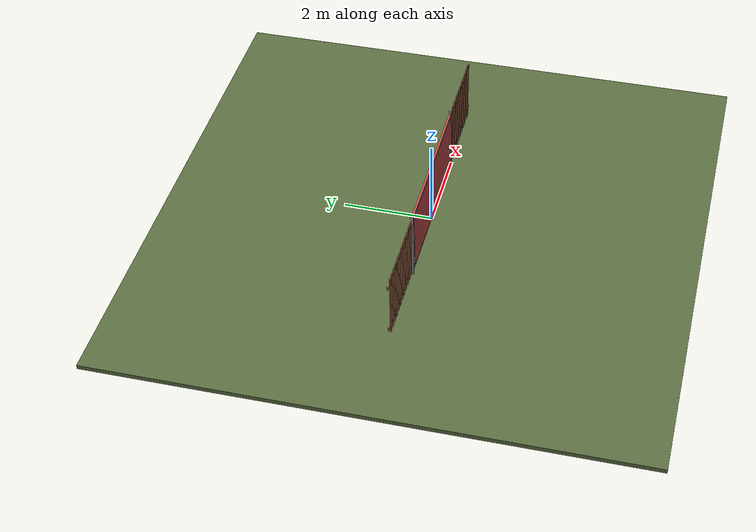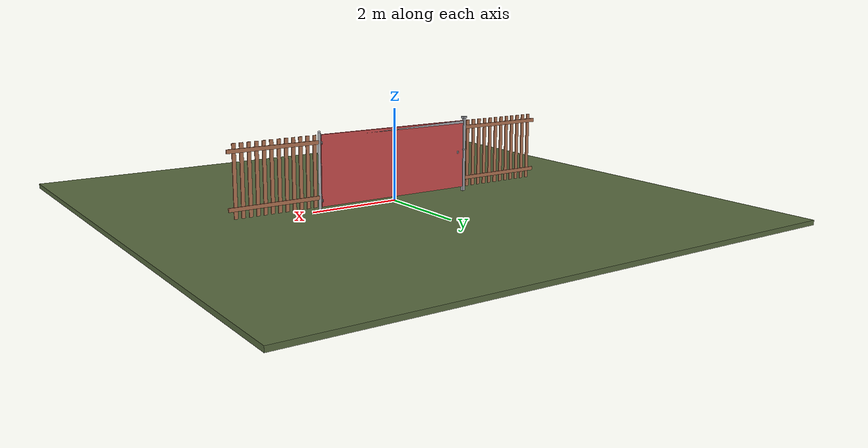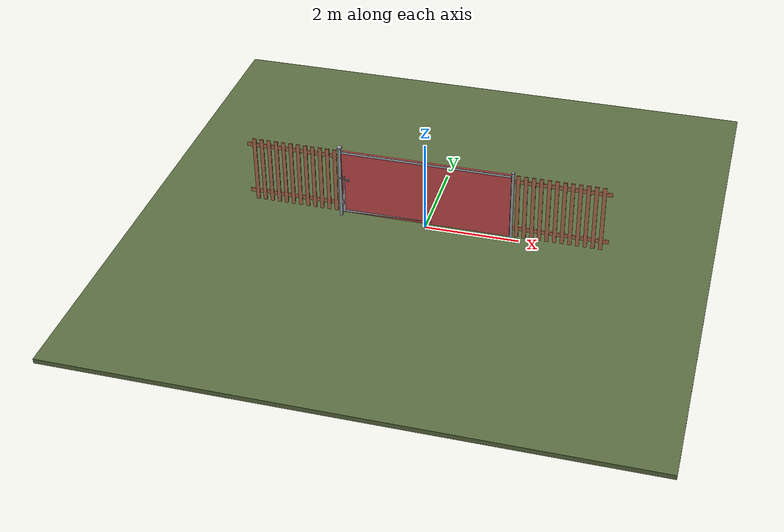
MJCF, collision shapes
<?xml version="1.0" ?>
<mujoco model="db0239_gate_swing_full">
  <compiler angle="radian" meshdir="../../hardware" texturedir="../../textures" autolimits="true" inertiafromgeom="false"/>
  <option timestep="0.002" integrator="implicitfast" cone="elliptic" impratio="10" noslip_iterations="3">
    <flag multiccd="enable"/>
  </option>
  <size memory="16M"/>
  <default>
    <geom condim="4" solref="0.005 1" solimp="0.95 0.99 0.001"/>
    <joint solreflimit="0.005 1" solimplimit="0.95 0.99 0.001"/>
    <tendon solreflimit="0.005 1"/>
    <equality solref="0.002 1"/>
  </default>
  <visual>
    <headlight ambient="0.4 0.4 0.4" diffuse="0.7 0.7 0.7" specular="0.2 0.2 0.2"/>
    <quality shadowsize="4096"/>
    <map znear="0.01" zfar="60"/>
  </visual>
  <asset>
    <mesh name="strap_hinge_78d1bbb966" file="strap_hinge_78d1bbb966.obj"/>
    <material name="mat_floor" rgba="0.35 0.42 0.25 1" specular="0.2" shininess="0.15" reflectance="0"/>
    <material name="mat_wall" rgba="0.78 0.76 0.7 1" specular="0.2" shininess="0.1" reflectance="0"/>
    <material name="mat_leaf" rgba="0.65 0.66 0.68 1" specular="0.74" shininess="0.5" reflectance="0.36"/>
    <material name="mat_hinge" rgba="0.65 0.66 0.68 1" specular="0.74" shininess="0.5" reflectance="0.36"/>
    <material name="mat_op_steel_galvanized" rgba="0.65 0.66 0.68 1" specular="0.74" shininess="0.5" reflectance="0.36"/>
    <material name="mat_frame" rgba="0.65 0.66 0.68 1" specular="0.74" shininess="0.5" reflectance="0.36"/>
    <material name="mat_fence" rgba="0.7 0.45 0.32 1" specular="0.2" shininess="0.4" reflectance="0"/>
    <texture name="skybox" type="skybox" builtin="gradient" rgb1="0.6 0.7 0.85" rgb2="0.9 0.92 0.95" width="256" height="256"/>
  </asset>
  <worldbody>
    <light name="sun" pos="1.5 -2.5 4" dir="-0.3 0.5 -0.8" directional="true" diffuse="0.8 0.8 0.8" specular="0.3 0.3 0.3" castshadow="true"/>
    <light name="fill" pos="-1.5 2.5 3" dir="0.3 -0.5 -0.7" directional="true" diffuse="0.35 0.35 0.4" castshadow="false"/>
    <camera name="robot_view" pos="0 -4.01125 1.88315" xyaxes="1 0 0 0 0.26963 0.962964" fovy="52"/>
    <camera name="far_view" pos="0 4.01125 1.88315" xyaxes="-1 0 0 0 -0.26963 0.962964" fovy="52"/>
    <camera name="iso" pos="-3.04855 -3.36945 2.52495" xyaxes="0.741536 -0.670913 0 0.242917 0.268487 0.932151" fovy="46"/>
    <camera name="detail_handle" pos="-1.606 -0.8345 1.285" xyaxes="0.97561 0.219512 0 -0.070934 0.315262 0.94635" fovy="38"/>
    <geom name="floor" type="box" size="6 6 0.05" pos="0 0 -0.05" material="mat_floor" group="0" contype="1" conaffinity="1" friction="0.8 0.005 0.0001" density="2400"/>
    <geom name="hinge_pintle_0" type="cylinder" size="0.008 0.02" pos="1.803 0.05 0.224" material="mat_hinge" group="1" contype="0" conaffinity="0" density="7850"/>
    <geom name="hinge_pintle_1" type="cylinder" size="0.008 0.02" pos="1.803 0.05 1.424" material="mat_hinge" group="1" contype="0" conaffinity="0" density="7850"/>
    <geom name="post_hinge" type="cylinder" size="0.03 0.825" pos="1.836 0 0.825" material="mat_frame" group="0" contype="1" conaffinity="1" friction="0.6 0.005 0.0001" density="800"/>
    <geom name="post_hinge_cap" type="sphere" size="0.03" pos="1.836 0 1.65" material="mat_frame" group="1" contype="0" conaffinity="0" density="800"/>
    <geom name="post_latch" type="box" size="0.03 0.03 0.825" pos="-1.836 0 0.825" material="mat_frame" group="0" contype="1" conaffinity="1" friction="0.6 0.005 0.0001" density="800"/>
    <geom name="post_latch_cap" type="box" size="0.045 0.045 0.02" pos="-1.836 0 1.67" material="mat_frame" group="1" contype="0" conaffinity="0" density="800"/>
    <geom name="gate_stop" type="box" size="0.02 0.012 0.06" pos="-1.786 -0.0345 0.35" material="mat_frame" group="0" contype="1" conaffinity="1" friction="0.6 0.005 0.0001" density="800"/>
    <geom name="fence_picket_l_0" type="box" size="0.04 0.01 0.75" pos="-1.946 0 0.85" material="mat_fence" group="0" contype="1" conaffinity="1" friction="0.6 0.005 0.0001" density="400"/>
    <geom name="fence_picket_l_1" type="box" size="0.04 0.01 0.75" pos="-2.106 0 0.85" material="mat_fence" group="0" contype="1" conaffinity="1" friction="0.6 0.005 0.0001" density="400"/>
    <geom name="fence_picket_l_2" type="box" size="0.04 0.01 0.75" pos="-2.266 0 0.85" material="mat_fence" group="0" contype="1" conaffinity="1" friction="0.6 0.005 0.0001" density="400"/>
    <geom name="fence_picket_l_3" type="box" size="0.04 0.01 0.75" pos="-2.426 0 0.85" material="mat_fence" group="0" contype="1" conaffinity="1" friction="0.6 0.005 0.0001" density="400"/>
    <geom name="fence_picket_l_4" type="box" size="0.04 0.01 0.75" pos="-2.586 0 0.85" material="mat_fence" group="0" contype="1" conaffinity="1" friction="0.6 0.005 0.0001" density="400"/>
    <geom name="fence_picket_l_5" type="box" size="0.04 0.01 0.75" pos="-2.746 0 0.85" material="mat_fence" group="0" contype="1" conaffinity="1" friction="0.6 0.005 0.0001" density="400"/>
    <geom name="fence_picket_l_6" type="box" size="0.04 0.01 0.75" pos="-2.906 0 0.85" material="mat_fence" group="0" contype="1" conaffinity="1" friction="0.6 0.005 0.0001" density="400"/>
    <geom name="fence_picket_l_7" type="box" size="0.04 0.01 0.75" pos="-3.066 0 0.85" material="mat_fence" group="0" contype="1" conaffinity="1" friction="0.6 0.005 0.0001" density="400"/>
    <geom name="fence_picket_l_8" type="box" size="0.04 0.01 0.75" pos="-3.226 0 0.85" material="mat_fence" group="0" contype="1" conaffinity="1" friction="0.6 0.005 0.0001" density="400"/>
    <geom name="fence_picket_l_9" type="box" size="0.04 0.01 0.75" pos="-3.386 0 0.85" material="mat_fence" group="0" contype="1" conaffinity="1" friction="0.6 0.005 0.0001" density="400"/>
    <geom name="fence_picket_l_10" type="box" size="0.04 0.01 0.75" pos="-3.546 0 0.85" material="mat_fence" group="0" contype="1" conaffinity="1" friction="0.6 0.005 0.0001" density="400"/>
    <geom name="fence_picket_l_11" type="box" size="0.04 0.01 0.75" pos="-3.706 0 0.85" material="mat_fence" group="0" contype="1" conaffinity="1" friction="0.6 0.005 0.0001" density="400"/>
    <geom name="fence_rail_l" type="box" size="1 0.015 0.04" pos="-2.866 0.015 1.45" material="mat_fence" group="0" contype="1" conaffinity="1" friction="0.6 0.005 0.0001" density="400"/>
    <geom name="fence_rail_b_l" type="box" size="1 0.015 0.04" pos="-2.866 0.015 0.3" material="mat_fence" group="0" contype="1" conaffinity="1" friction="0.6 0.005 0.0001" density="400"/>
    <geom name="fence_picket_r_0" type="box" size="0.04 0.01 0.75" pos="1.946 0 0.85" material="mat_fence" group="0" contype="1" conaffinity="1" friction="0.6 0.005 0.0001" density="400"/>
    <geom name="fence_picket_r_1" type="box" size="0.04 0.01 0.75" pos="2.106 0 0.85" material="mat_fence" group="0" contype="1" conaffinity="1" friction="0.6 0.005 0.0001" density="400"/>
    <geom name="fence_picket_r_2" type="box" size="0.04 0.01 0.75" pos="2.266 0 0.85" material="mat_fence" group="0" contype="1" conaffinity="1" friction="0.6 0.005 0.0001" density="400"/>
    <geom name="fence_picket_r_3" type="box" size="0.04 0.01 0.75" pos="2.426 0 0.85" material="mat_fence" group="0" contype="1" conaffinity="1" friction="0.6 0.005 0.0001" density="400"/>
    <geom name="fence_picket_r_4" type="box" size="0.04 0.01 0.75" pos="2.586 0 0.85" material="mat_fence" group="0" contype="1" conaffinity="1" friction="0.6 0.005 0.0001" density="400"/>
    <geom name="fence_picket_r_5" type="box" size="0.04 0.01 0.75" pos="2.746 0 0.85" material="mat_fence" group="0" contype="1" conaffinity="1" friction="0.6 0.005 0.0001" density="400"/>
    <geom name="fence_picket_r_6" type="box" size="0.04 0.01 0.75" pos="2.906 0 0.85" material="mat_fence" group="0" contype="1" conaffinity="1" friction="0.6 0.005 0.0001" density="400"/>
    <geom name="fence_picket_r_7" type="box" size="0.04 0.01 0.75" pos="3.066 0 0.85" material="mat_fence" group="0" contype="1" conaffinity="1" friction="0.6 0.005 0.0001" density="400"/>
    <geom name="fence_picket_r_8" type="box" size="0.04 0.01 0.75" pos="3.226 0 0.85" material="mat_fence" group="0" contype="1" conaffinity="1" friction="0.6 0.005 0.0001" density="400"/>
    <geom name="fence_picket_r_9" type="box" size="0.04 0.01 0.75" pos="3.386 0 0.85" material="mat_fence" group="0" contype="1" conaffinity="1" friction="0.6 0.005 0.0001" density="400"/>
    <geom name="fence_picket_r_10" type="box" size="0.04 0.01 0.75" pos="3.546 0 0.85" material="mat_fence" group="0" contype="1" conaffinity="1" friction="0.6 0.005 0.0001" density="400"/>
    <geom name="fence_picket_r_11" type="box" size="0.04 0.01 0.75" pos="3.706 0 0.85" material="mat_fence" group="0" contype="1" conaffinity="1" friction="0.6 0.005 0.0001" density="400"/>
    <geom name="fence_rail_r" type="box" size="1 0.015 0.04" pos="2.866 0.015 1.45" material="mat_fence" group="0" contype="1" conaffinity="1" friction="0.6 0.005 0.0001" density="400"/>
    <geom name="fence_rail_b_r" type="box" size="1 0.015 0.04" pos="2.866 0.015 0.3" material="mat_fence" group="0" contype="1" conaffinity="1" friction="0.6 0.005 0.0001" density="400"/>
    <geom name="hinge_pintle_0_strap_0" type="box" size="0.0064 0.0065 0.016" pos="1.803 0.036 0.224" material="mat_hinge" group="1" contype="0" conaffinity="0" density="7850"/>
    <geom name="hinge_pintle_1_strap_0" type="box" size="0.0064 0.0065 0.016" pos="1.803 0.036 1.424" material="mat_hinge" group="1" contype="0" conaffinity="0" density="7850"/>
    <site name="approach_point" pos="0 -1.5 0" quat="1 0 0 0" size="0.05" rgba="0.2 0.9 0.2 0.5" group="4"/>
    <site name="goal_point" pos="0 1.5 0" quat="1 0 0 0" size="0.05" rgba="0.2 0.9 0.2 0.5" group="4"/>
    <site name="door_plane_center" pos="0 0 0.76" quat="1 0 0 0" size="0.02" rgba="0.2 0.9 0.2 0.5" group="4"/>
    <body name="leaf" pos="1.806 0 0">
      <inertial pos="-1.760167 0.00079 0.85013" mass="72.384337" quat="0.707107 -0.707107 -0.000325 0.000493" diaginertia="13.90936335 81.893192886 95.77545326"/>
      <joint name="leaf_hinge" type="hinge" axis="0 0 -1" pos="-0.003 0.05 0" limited="true" range="0 1.745329" damping="45.550797" frictionloss="16.233475" armature="0.02"/>
      <geom name="leaf_slab_col" type="box" size="1.8 0.0225 0.75" pos="-1.803 0 0.85" material="mat_leaf" group="3" contype="1" conaffinity="1" rgba="0.8 0.3 0.3 0.25" friction="0.42 0.005 0.0001" density="1"/>
      <geom name="leaf_rail_b" type="box" size="1.8 0.0225 0.03" pos="-1.803 0 0.13" material="mat_leaf" group="1" contype="0" conaffinity="0" density="1"/>
      <geom name="leaf_rail_t" type="box" size="1.8 0.0225 0.03" pos="-1.803 0 1.57" material="mat_leaf" group="1" contype="0" conaffinity="0" density="1"/>
      <geom name="leaf_stile_h" type="box" size="0.03 0.0225 0.75" pos="-0.033 0 0.85" material="mat_leaf" group="1" contype="0" conaffinity="0" density="1"/>
      <geom name="leaf_stile_l" type="box" size="0.03 0.0225 0.75" pos="-3.573 0 0.85" material="mat_leaf" group="1" contype="0" conaffinity="0" density="1"/>
      <geom name="leaf_bar_0" type="cylinder" size="0.0095 0.69" pos="-0.127444 0 0.85" material="mat_leaf" group="1" contype="0" conaffinity="0" density="1"/>
      <geom name="leaf_bar_1" type="cylinder" size="0.0095 0.69" pos="-0.256333 0 0.85" material="mat_leaf" group="1" contype="0" conaffinity="0" density="1"/>
      <geom name="leaf_bar_2" type="cylinder" size="0.0095 0.69" pos="-0.385222 0 0.85" material="mat_leaf" group="1" contype="0" conaffinity="0" density="1"/>
      <geom name="leaf_bar_3" type="cylinder" size="0.0095 0.69" pos="-0.514111 0 0.85" material="mat_leaf" group="1" contype="0" conaffinity="0" density="1"/>
      <geom name="leaf_bar_4" type="cylinder" size="0.0095 0.69" pos="-0.643 0 0.85" material="mat_leaf" group="1" contype="0" conaffinity="0" density="1"/>
      <geom name="leaf_bar_5" type="cylinder" size="0.0095 0.69" pos="-0.771889 0 0.85" material="mat_leaf" group="1" contype="0" conaffinity="0" density="1"/>
      <geom name="leaf_bar_6" type="cylinder" size="0.0095 0.69" pos="-0.900778 0 0.85" material="mat_leaf" group="1" contype="0" conaffinity="0" density="1"/>
      <geom name="leaf_bar_7" type="cylinder" size="0.0095 0.69" pos="-1.029667 0 0.85" material="mat_leaf" group="1" contype="0" conaffinity="0" density="1"/>
      <geom name="leaf_bar_8" type="cylinder" size="0.0095 0.69" pos="-1.158556 0 0.85" material="mat_leaf" group="1" contype="0" conaffinity="0" density="1"/>
      <geom name="leaf_bar_9" type="cylinder" size="0.0095 0.69" pos="-1.287444 0 0.85" material="mat_leaf" group="1" contype="0" conaffinity="0" density="1"/>
      <geom name="leaf_bar_10" type="cylinder" size="0.0095 0.69" pos="-1.416333 0 0.85" material="mat_leaf" group="1" contype="0" conaffinity="0" density="1"/>
      <geom name="leaf_bar_11" type="cylinder" size="0.0095 0.69" pos="-1.545222 0 0.85" material="mat_leaf" group="1" contype="0" conaffinity="0" density="1"/>
      <geom name="leaf_bar_12" type="cylinder" size="0.0095 0.69" pos="-1.674111 0 0.85" material="mat_leaf" group="1" contype="0" conaffinity="0" density="1"/>
      <geom name="leaf_bar_13" type="cylinder" size="0.0095 0.69" pos="-1.803 0 0.85" material="mat_leaf" group="1" contype="0" conaffinity="0" density="1"/>
      <geom name="leaf_bar_14" type="cylinder" size="0.0095 0.69" pos="-1.931889 0 0.85" material="mat_leaf" group="1" contype="0" conaffinity="0" density="1"/>
      <geom name="leaf_bar_15" type="cylinder" size="0.0095 0.69" pos="-2.060778 0 0.85" material="mat_leaf" group="1" contype="0" conaffinity="0" density="1"/>
      <geom name="leaf_bar_16" type="cylinder" size="0.0095 0.69" pos="-2.189667 0 0.85" material="mat_leaf" group="1" contype="0" conaffinity="0" density="1"/>
      <geom name="leaf_bar_17" type="cylinder" size="0.0095 0.69" pos="-2.318556 0 0.85" material="mat_leaf" group="1" contype="0" conaffinity="0" density="1"/>
      <geom name="leaf_bar_18" type="cylinder" size="0.0095 0.69" pos="-2.447444 0 0.85" material="mat_leaf" group="1" contype="0" conaffinity="0" density="1"/>
      <geom name="leaf_bar_19" type="cylinder" size="0.0095 0.69" pos="-2.576333 0 0.85" material="mat_leaf" group="1" contype="0" conaffinity="0" density="1"/>
      <geom name="leaf_bar_20" type="cylinder" size="0.0095 0.69" pos="-2.705222 0 0.85" material="mat_leaf" group="1" contype="0" conaffinity="0" density="1"/>
      <geom name="leaf_bar_21" type="cylinder" size="0.0095 0.69" pos="-2.834111 0 0.85" material="mat_leaf" group="1" contype="0" conaffinity="0" density="1"/>
      <geom name="leaf_bar_22" type="cylinder" size="0.0095 0.69" pos="-2.963 0 0.85" material="mat_leaf" group="1" contype="0" conaffinity="0" density="1"/>
      <geom name="leaf_bar_23" type="cylinder" size="0.0095 0.69" pos="-3.091889 0 0.85" material="mat_leaf" group="1" contype="0" conaffinity="0" density="1"/>
      <geom name="leaf_bar_24" type="cylinder" size="0.0095 0.69" pos="-3.220778 0 0.85" material="mat_leaf" group="1" contype="0" conaffinity="0" density="1"/>
      <geom name="leaf_bar_25" type="cylinder" size="0.0095 0.69" pos="-3.349667 0 0.85" material="mat_leaf" group="1" contype="0" conaffinity="0" density="1"/>
      <geom name="leaf_bar_26" type="cylinder" size="0.0095 0.69" pos="-3.478556 0 0.85" material="mat_leaf" group="1" contype="0" conaffinity="0" density="1"/>
      <geom name="leaf_crossbar_33" type="box" size="1.74 0.018 0.02" pos="-1.803 0 0.595" material="mat_leaf" group="1" contype="0" conaffinity="0" density="1"/>
      <geom name="leaf_crossbar_66" type="box" size="1.74 0.018 0.02" pos="-1.803 0 1.09" material="mat_leaf" group="1" contype="0" conaffinity="0" density="1"/>
      <geom name="hinge_strap_0" type="mesh" mesh="strap_hinge_78d1bbb966" pos="-0.003 0.0255 0.25" quat="0 0 0 1" material="mat_hinge" group="1" contype="0" conaffinity="0" density="7850"/>
      <geom name="hinge_strap_eye_0" type="cylinder" size="0.011 0.012" pos="-0.003 0.05 0.25" material="mat_hinge" group="1" contype="0" conaffinity="0" density="7850"/>
      <geom name="hinge_strap_neck_0" type="box" size="0.012 0.01625 0.006" pos="-0.003 0.03775 0.25" material="mat_hinge" group="1" contype="0" conaffinity="0" density="7850"/>
      <geom name="hinge_strap_1" type="mesh" mesh="strap_hinge_78d1bbb966" pos="-0.003 0.0255 1.45" quat="0 0 0 1" material="mat_hinge" group="1" contype="0" conaffinity="0" density="7850"/>
      <geom name="hinge_strap_eye_1" type="cylinder" size="0.011 0.012" pos="-0.003 0.05 1.45" material="mat_hinge" group="1" contype="0" conaffinity="0" density="7850"/>
      <geom name="hinge_strap_neck_1" type="box" size="0.012 0.01625 0.006" pos="-0.003 0.03775 1.45" material="mat_hinge" group="1" contype="0" conaffinity="0" density="7850"/>
      <geom name="leaf_fork_strap_n" type="box" size="0.02 0.002 0.03" pos="-3.463 -0.0245 0.9" material="mat_op_steel_galvanized" group="1" contype="0" conaffinity="0" density="7800"/>
      <geom name="leaf_fork_strap_p" type="box" size="0.02 0.002 0.03" pos="-3.463 0.0245 0.9" material="mat_op_steel_galvanized" group="1" contype="0" conaffinity="0" density="7800"/>
      <geom name="leaf_fork_pin" type="cylinder" size="0.005 0.0345" pos="-3.463 -0.008 0.9" quat="0.707107 -0.707107 0 0" material="mat_op_steel_galvanized" group="1" contype="0" conaffinity="0" density="7800"/>
      <site name="leaf_edge_mid" pos="-3.603 0 0.75" quat="1 0 0 0" size="0.02" rgba="0.2 0.9 0.2 0.5" group="4"/>
      <body name="leaf_fork" pos="-3.463 0 0.9">
        <inertial pos="-0.108366 -0.01692 0.039297" mass="0.192163" quat="0.979022 -0.0663 0.153719 -0.116148" diaginertia="0.000161319 0.000798601 0.000899279"/>
        <joint name="leaf_fork_hinge" type="hinge" axis="0 1 0" limited="true" range="0 1.2" damping="0.028928" frictionloss="0.004642" armature="0.0001"/>
        <geom name="leaf_fork_arm" type="box" size="0.069176 0.004 0.012" pos="-0.0645 -0.0345 0.025" quat="0.982958 0 0.183833 0" material="mat_op_steel_galvanized" group="0" contype="1" conaffinity="1" friction="0.6 0.005 0.0001" density="2500"/>
        <geom name="leaf_fork_eye" type="cylinder" size="0.014 0.005" pos="0 -0.0345 0" quat="0.707107 -0.707107 0 0" material="mat_op_steel_galvanized" group="1" contype="0" conaffinity="0" density="2500"/>
        <geom name="leaf_fork_tine_n" type="box" size="0.04 0.003 0.012" pos="-0.169 -0.039 0.05" material="mat_op_steel_galvanized" group="0" contype="1" conaffinity="1" friction="0.6 0.005 0.0001" density="2500"/>
        <geom name="leaf_fork_tine_p" type="box" size="0.04 0.003 0.012" pos="-0.169 0.039 0.05" material="mat_op_steel_galvanized" group="0" contype="1" conaffinity="1" friction="0.6 0.005 0.0001" density="2500"/>
        <geom name="leaf_fork_bridge" type="box" size="0.004 0.042 0.012" pos="-0.129 0 0.05" material="mat_op_steel_galvanized" group="0" contype="1" conaffinity="1" friction="0.6 0.005 0.0001" density="2500"/>
        <geom name="leaf_fork_handle" type="capsule" size="0.006 0.018" pos="-0.129 -0.0345 0.08" material="mat_op_steel_galvanized" group="0" contype="1" conaffinity="1" friction="0.7 0.01 0.0001" density="2500"/>
        <site name="leaf_fork_grip" pos="-0.129 -0.0345 0.105" quat="1 0 0 0" size="0.012" rgba="0.2 0.9 0.2 0.5" group="4"/>
      </body>
    </body>
  </worldbody>
  <sensor>
    <jointpos name="leaf_hinge_pos" joint="leaf_hinge"/>
    <jointvel name="leaf_hinge_vel" joint="leaf_hinge"/>
    <jointpos name="leaf_fork_hinge_pos" joint="leaf_fork_hinge"/>
    <jointvel name="leaf_fork_hinge_vel" joint="leaf_fork_hinge"/>
  </sensor>
</mujoco>
